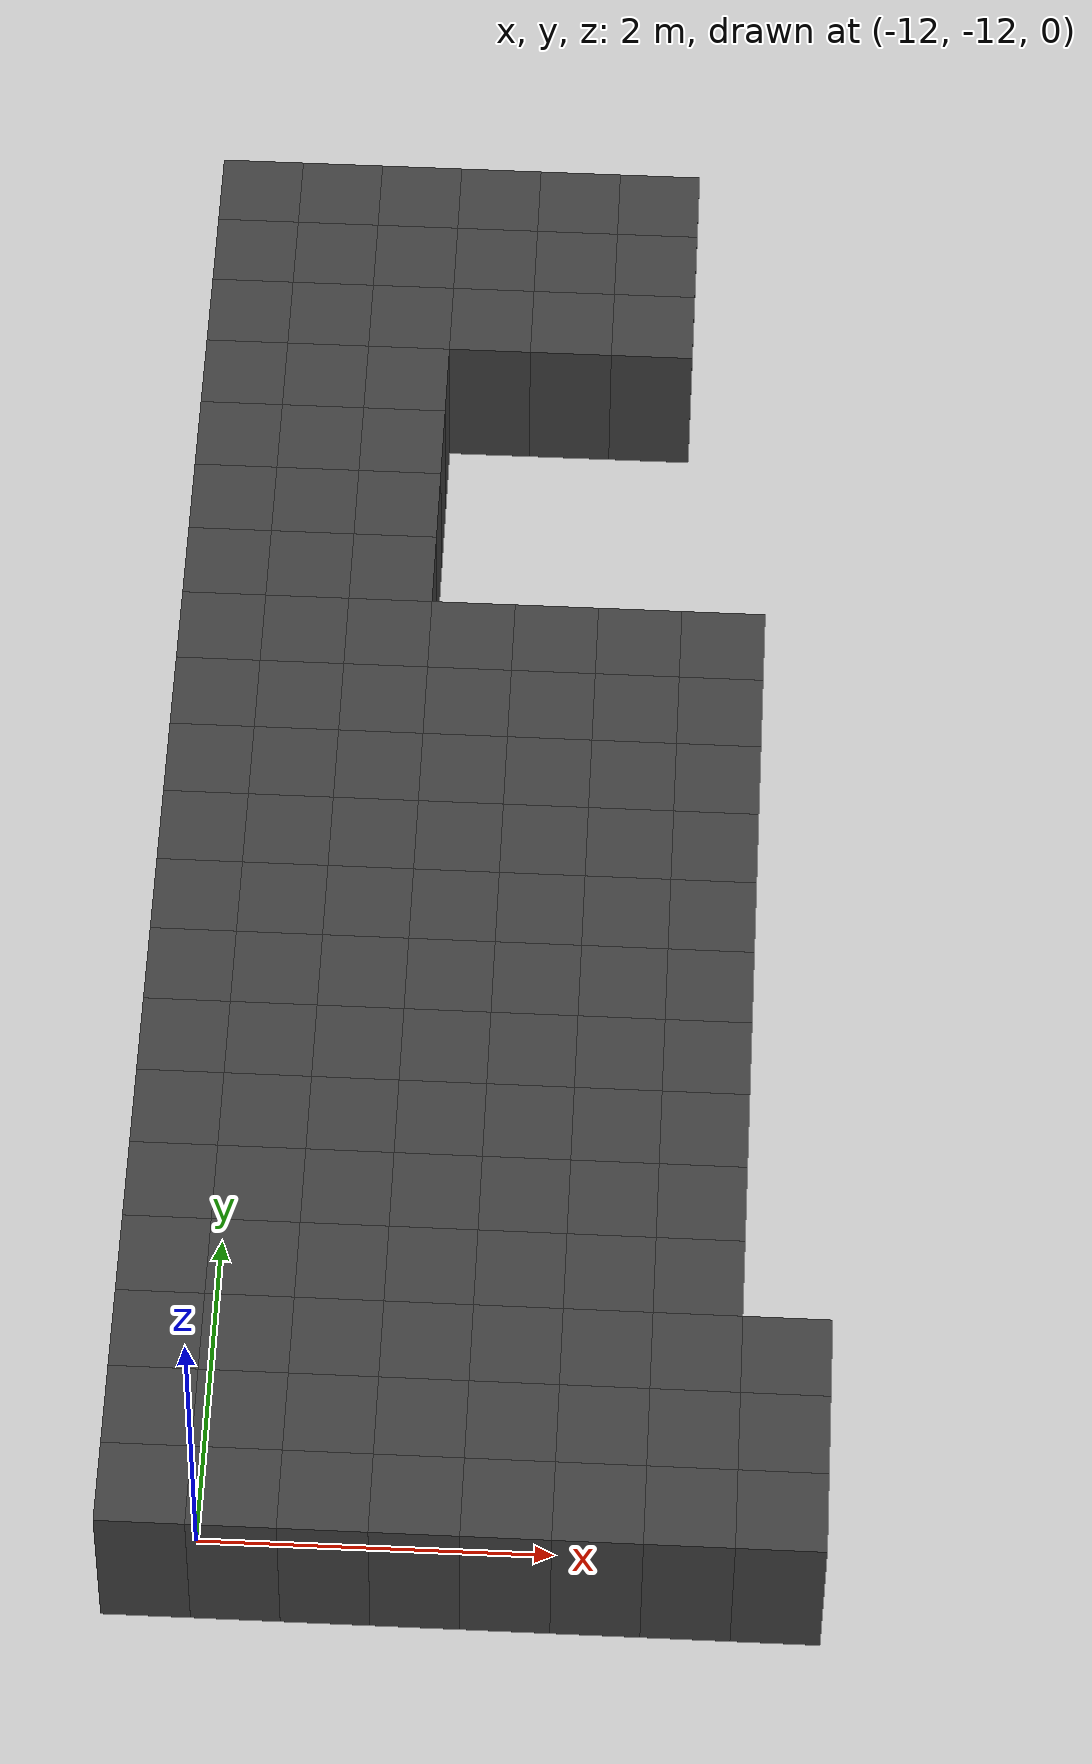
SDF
<sdf version="1.7">
 <world name="map_14802">
  <model name="ground_plane">
   <static>true</static>
   <link name="link">
    <collision name="collision">
     <geometry><plane><normal>0 0 1</normal><size>200 200</size></plane></geometry>
    </collision>
    <visual name="visual">
     <geometry><plane><normal>0 0 1</normal><size>200 200</size></plane></geometry>
     <material><ambient>0.8 0.8 0.8 1</ambient><diffuse>0.8 0.8 0.8 1</diffuse></material>
    </visual>
   </link>
  </model>
  <model name="maze_environment">
   <static>true</static>
   <link name="wall_1039">
    <pose>-12.250 -2.750 0.500 0 0 0</pose>
    <collision name="col"><geometry><box><size>0.5 0.5 1.0</size></box></geometry></collision>
    <visual name="vis">
     <geometry><box><size>0.5 0.5 1.0</size></box></geometry>
     <material><ambient>0.15 0.15 0.15 1</ambient><diffuse>0.25 0.25 0.25 1</diffuse></material>
    </visual>
   </link>
   <link name="wall_1040">
    <pose>-11.750 -2.750 0.500 0 0 0</pose>
    <collision name="col"><geometry><box><size>0.5 0.5 1.0</size></box></geometry></collision>
    <visual name="vis">
     <geometry><box><size>0.5 0.5 1.0</size></box></geometry>
     <material><ambient>0.15 0.15 0.15 1</ambient><diffuse>0.25 0.25 0.25 1</diffuse></material>
    </visual>
   </link>
   <link name="wall_1041">
    <pose>-11.250 -2.750 0.500 0 0 0</pose>
    <collision name="col"><geometry><box><size>0.5 0.5 1.0</size></box></geometry></collision>
    <visual name="vis">
     <geometry><box><size>0.5 0.5 1.0</size></box></geometry>
     <material><ambient>0.15 0.15 0.15 1</ambient><diffuse>0.25 0.25 0.25 1</diffuse></material>
    </visual>
   </link>
   <link name="wall_1042">
    <pose>-10.750 -2.750 0.500 0 0 0</pose>
    <collision name="col"><geometry><box><size>0.5 0.5 1.0</size></box></geometry></collision>
    <visual name="vis">
     <geometry><box><size>0.5 0.5 1.0</size></box></geometry>
     <material><ambient>0.15 0.15 0.15 1</ambient><diffuse>0.25 0.25 0.25 1</diffuse></material>
    </visual>
   </link>
   <link name="wall_1043">
    <pose>-10.250 -2.750 0.500 0 0 0</pose>
    <collision name="col"><geometry><box><size>0.5 0.5 1.0</size></box></geometry></collision>
    <visual name="vis">
     <geometry><box><size>0.5 0.5 1.0</size></box></geometry>
     <material><ambient>0.15 0.15 0.15 1</ambient><diffuse>0.25 0.25 0.25 1</diffuse></material>
    </visual>
   </link>
   <link name="wall_1044">
    <pose>-9.750 -2.750 0.500 0 0 0</pose>
    <collision name="col"><geometry><box><size>0.5 0.5 1.0</size></box></geometry></collision>
    <visual name="vis">
     <geometry><box><size>0.5 0.5 1.0</size></box></geometry>
     <material><ambient>0.15 0.15 0.15 1</ambient><diffuse>0.25 0.25 0.25 1</diffuse></material>
    </visual>
   </link>
   <link name="wall_1067">
    <pose>-12.250 -3.250 0.500 0 0 0</pose>
    <collision name="col"><geometry><box><size>0.5 0.5 1.0</size></box></geometry></collision>
    <visual name="vis">
     <geometry><box><size>0.5 0.5 1.0</size></box></geometry>
     <material><ambient>0.15 0.15 0.15 1</ambient><diffuse>0.25 0.25 0.25 1</diffuse></material>
    </visual>
   </link>
   <link name="wall_1068">
    <pose>-11.750 -3.250 0.500 0 0 0</pose>
    <collision name="col"><geometry><box><size>0.5 0.5 1.0</size></box></geometry></collision>
    <visual name="vis">
     <geometry><box><size>0.5 0.5 1.0</size></box></geometry>
     <material><ambient>0.15 0.15 0.15 1</ambient><diffuse>0.25 0.25 0.25 1</diffuse></material>
    </visual>
   </link>
   <link name="wall_1069">
    <pose>-11.250 -3.250 0.500 0 0 0</pose>
    <collision name="col"><geometry><box><size>0.5 0.5 1.0</size></box></geometry></collision>
    <visual name="vis">
     <geometry><box><size>0.5 0.5 1.0</size></box></geometry>
     <material><ambient>0.15 0.15 0.15 1</ambient><diffuse>0.25 0.25 0.25 1</diffuse></material>
    </visual>
   </link>
   <link name="wall_1070">
    <pose>-10.750 -3.250 0.500 0 0 0</pose>
    <collision name="col"><geometry><box><size>0.5 0.5 1.0</size></box></geometry></collision>
    <visual name="vis">
     <geometry><box><size>0.5 0.5 1.0</size></box></geometry>
     <material><ambient>0.15 0.15 0.15 1</ambient><diffuse>0.25 0.25 0.25 1</diffuse></material>
    </visual>
   </link>
   <link name="wall_1071">
    <pose>-10.250 -3.250 0.500 0 0 0</pose>
    <collision name="col"><geometry><box><size>0.5 0.5 1.0</size></box></geometry></collision>
    <visual name="vis">
     <geometry><box><size>0.5 0.5 1.0</size></box></geometry>
     <material><ambient>0.15 0.15 0.15 1</ambient><diffuse>0.25 0.25 0.25 1</diffuse></material>
    </visual>
   </link>
   <link name="wall_1072">
    <pose>-9.750 -3.250 0.500 0 0 0</pose>
    <collision name="col"><geometry><box><size>0.5 0.5 1.0</size></box></geometry></collision>
    <visual name="vis">
     <geometry><box><size>0.5 0.5 1.0</size></box></geometry>
     <material><ambient>0.15 0.15 0.15 1</ambient><diffuse>0.25 0.25 0.25 1</diffuse></material>
    </visual>
   </link>
   <link name="wall_1091">
    <pose>-12.250 -3.750 0.500 0 0 0</pose>
    <collision name="col"><geometry><box><size>0.5 0.5 1.0</size></box></geometry></collision>
    <visual name="vis">
     <geometry><box><size>0.5 0.5 1.0</size></box></geometry>
     <material><ambient>0.15 0.15 0.15 1</ambient><diffuse>0.25 0.25 0.25 1</diffuse></material>
    </visual>
   </link>
   <link name="wall_1092">
    <pose>-11.750 -3.750 0.500 0 0 0</pose>
    <collision name="col"><geometry><box><size>0.5 0.5 1.0</size></box></geometry></collision>
    <visual name="vis">
     <geometry><box><size>0.5 0.5 1.0</size></box></geometry>
     <material><ambient>0.15 0.15 0.15 1</ambient><diffuse>0.25 0.25 0.25 1</diffuse></material>
    </visual>
   </link>
   <link name="wall_1093">
    <pose>-11.250 -3.750 0.500 0 0 0</pose>
    <collision name="col"><geometry><box><size>0.5 0.5 1.0</size></box></geometry></collision>
    <visual name="vis">
     <geometry><box><size>0.5 0.5 1.0</size></box></geometry>
     <material><ambient>0.15 0.15 0.15 1</ambient><diffuse>0.25 0.25 0.25 1</diffuse></material>
    </visual>
   </link>
   <link name="wall_1094">
    <pose>-10.750 -3.750 0.500 0 0 0</pose>
    <collision name="col"><geometry><box><size>0.5 0.5 1.0</size></box></geometry></collision>
    <visual name="vis">
     <geometry><box><size>0.5 0.5 1.0</size></box></geometry>
     <material><ambient>0.15 0.15 0.15 1</ambient><diffuse>0.25 0.25 0.25 1</diffuse></material>
    </visual>
   </link>
   <link name="wall_1095">
    <pose>-10.250 -3.750 0.500 0 0 0</pose>
    <collision name="col"><geometry><box><size>0.5 0.5 1.0</size></box></geometry></collision>
    <visual name="vis">
     <geometry><box><size>0.5 0.5 1.0</size></box></geometry>
     <material><ambient>0.15 0.15 0.15 1</ambient><diffuse>0.25 0.25 0.25 1</diffuse></material>
    </visual>
   </link>
   <link name="wall_1096">
    <pose>-9.750 -3.750 0.500 0 0 0</pose>
    <collision name="col"><geometry><box><size>0.5 0.5 1.0</size></box></geometry></collision>
    <visual name="vis">
     <geometry><box><size>0.5 0.5 1.0</size></box></geometry>
     <material><ambient>0.15 0.15 0.15 1</ambient><diffuse>0.25 0.25 0.25 1</diffuse></material>
    </visual>
   </link>
   <link name="wall_1120">
    <pose>-12.250 -4.250 0.500 0 0 0</pose>
    <collision name="col"><geometry><box><size>0.5 0.5 1.0</size></box></geometry></collision>
    <visual name="vis">
     <geometry><box><size>0.5 0.5 1.0</size></box></geometry>
     <material><ambient>0.15 0.15 0.15 1</ambient><diffuse>0.25 0.25 0.25 1</diffuse></material>
    </visual>
   </link>
   <link name="wall_1121">
    <pose>-11.750 -4.250 0.500 0 0 0</pose>
    <collision name="col"><geometry><box><size>0.5 0.5 1.0</size></box></geometry></collision>
    <visual name="vis">
     <geometry><box><size>0.5 0.5 1.0</size></box></geometry>
     <material><ambient>0.15 0.15 0.15 1</ambient><diffuse>0.25 0.25 0.25 1</diffuse></material>
    </visual>
   </link>
   <link name="wall_1122">
    <pose>-11.250 -4.250 0.500 0 0 0</pose>
    <collision name="col"><geometry><box><size>0.5 0.5 1.0</size></box></geometry></collision>
    <visual name="vis">
     <geometry><box><size>0.5 0.5 1.0</size></box></geometry>
     <material><ambient>0.15 0.15 0.15 1</ambient><diffuse>0.25 0.25 0.25 1</diffuse></material>
    </visual>
   </link>
   <link name="wall_1141">
    <pose>-12.250 -4.750 0.500 0 0 0</pose>
    <collision name="col"><geometry><box><size>0.5 0.5 1.0</size></box></geometry></collision>
    <visual name="vis">
     <geometry><box><size>0.5 0.5 1.0</size></box></geometry>
     <material><ambient>0.15 0.15 0.15 1</ambient><diffuse>0.25 0.25 0.25 1</diffuse></material>
    </visual>
   </link>
   <link name="wall_1142">
    <pose>-11.750 -4.750 0.500 0 0 0</pose>
    <collision name="col"><geometry><box><size>0.5 0.5 1.0</size></box></geometry></collision>
    <visual name="vis">
     <geometry><box><size>0.5 0.5 1.0</size></box></geometry>
     <material><ambient>0.15 0.15 0.15 1</ambient><diffuse>0.25 0.25 0.25 1</diffuse></material>
    </visual>
   </link>
   <link name="wall_1143">
    <pose>-11.250 -4.750 0.500 0 0 0</pose>
    <collision name="col"><geometry><box><size>0.5 0.5 1.0</size></box></geometry></collision>
    <visual name="vis">
     <geometry><box><size>0.5 0.5 1.0</size></box></geometry>
     <material><ambient>0.15 0.15 0.15 1</ambient><diffuse>0.25 0.25 0.25 1</diffuse></material>
    </visual>
   </link>
   <link name="wall_1158">
    <pose>-12.250 -5.250 0.500 0 0 0</pose>
    <collision name="col"><geometry><box><size>0.5 0.5 1.0</size></box></geometry></collision>
    <visual name="vis">
     <geometry><box><size>0.5 0.5 1.0</size></box></geometry>
     <material><ambient>0.15 0.15 0.15 1</ambient><diffuse>0.25 0.25 0.25 1</diffuse></material>
    </visual>
   </link>
   <link name="wall_1159">
    <pose>-11.750 -5.250 0.500 0 0 0</pose>
    <collision name="col"><geometry><box><size>0.5 0.5 1.0</size></box></geometry></collision>
    <visual name="vis">
     <geometry><box><size>0.5 0.5 1.0</size></box></geometry>
     <material><ambient>0.15 0.15 0.15 1</ambient><diffuse>0.25 0.25 0.25 1</diffuse></material>
    </visual>
   </link>
   <link name="wall_1160">
    <pose>-11.250 -5.250 0.500 0 0 0</pose>
    <collision name="col"><geometry><box><size>0.5 0.5 1.0</size></box></geometry></collision>
    <visual name="vis">
     <geometry><box><size>0.5 0.5 1.0</size></box></geometry>
     <material><ambient>0.15 0.15 0.15 1</ambient><diffuse>0.25 0.25 0.25 1</diffuse></material>
    </visual>
   </link>
   <link name="wall_1186">
    <pose>-12.250 -5.750 0.500 0 0 0</pose>
    <collision name="col"><geometry><box><size>0.5 0.5 1.0</size></box></geometry></collision>
    <visual name="vis">
     <geometry><box><size>0.5 0.5 1.0</size></box></geometry>
     <material><ambient>0.15 0.15 0.15 1</ambient><diffuse>0.25 0.25 0.25 1</diffuse></material>
    </visual>
   </link>
   <link name="wall_1187">
    <pose>-11.750 -5.750 0.500 0 0 0</pose>
    <collision name="col"><geometry><box><size>0.5 0.5 1.0</size></box></geometry></collision>
    <visual name="vis">
     <geometry><box><size>0.5 0.5 1.0</size></box></geometry>
     <material><ambient>0.15 0.15 0.15 1</ambient><diffuse>0.25 0.25 0.25 1</diffuse></material>
    </visual>
   </link>
   <link name="wall_1188">
    <pose>-11.250 -5.750 0.500 0 0 0</pose>
    <collision name="col"><geometry><box><size>0.5 0.5 1.0</size></box></geometry></collision>
    <visual name="vis">
     <geometry><box><size>0.5 0.5 1.0</size></box></geometry>
     <material><ambient>0.15 0.15 0.15 1</ambient><diffuse>0.25 0.25 0.25 1</diffuse></material>
    </visual>
   </link>
   <link name="wall_1207">
    <pose>-12.250 -6.250 0.500 0 0 0</pose>
    <collision name="col"><geometry><box><size>0.5 0.5 1.0</size></box></geometry></collision>
    <visual name="vis">
     <geometry><box><size>0.5 0.5 1.0</size></box></geometry>
     <material><ambient>0.15 0.15 0.15 1</ambient><diffuse>0.25 0.25 0.25 1</diffuse></material>
    </visual>
   </link>
   <link name="wall_1208">
    <pose>-11.750 -6.250 0.500 0 0 0</pose>
    <collision name="col"><geometry><box><size>0.5 0.5 1.0</size></box></geometry></collision>
    <visual name="vis">
     <geometry><box><size>0.5 0.5 1.0</size></box></geometry>
     <material><ambient>0.15 0.15 0.15 1</ambient><diffuse>0.25 0.25 0.25 1</diffuse></material>
    </visual>
   </link>
   <link name="wall_1209">
    <pose>-11.250 -6.250 0.500 0 0 0</pose>
    <collision name="col"><geometry><box><size>0.5 0.5 1.0</size></box></geometry></collision>
    <visual name="vis">
     <geometry><box><size>0.5 0.5 1.0</size></box></geometry>
     <material><ambient>0.15 0.15 0.15 1</ambient><diffuse>0.25 0.25 0.25 1</diffuse></material>
    </visual>
   </link>
   <link name="wall_1210">
    <pose>-10.750 -6.250 0.500 0 0 0</pose>
    <collision name="col"><geometry><box><size>0.5 0.5 1.0</size></box></geometry></collision>
    <visual name="vis">
     <geometry><box><size>0.5 0.5 1.0</size></box></geometry>
     <material><ambient>0.15 0.15 0.15 1</ambient><diffuse>0.25 0.25 0.25 1</diffuse></material>
    </visual>
   </link>
   <link name="wall_1211">
    <pose>-10.250 -6.250 0.500 0 0 0</pose>
    <collision name="col"><geometry><box><size>0.5 0.5 1.0</size></box></geometry></collision>
    <visual name="vis">
     <geometry><box><size>0.5 0.5 1.0</size></box></geometry>
     <material><ambient>0.15 0.15 0.15 1</ambient><diffuse>0.25 0.25 0.25 1</diffuse></material>
    </visual>
   </link>
   <link name="wall_1212">
    <pose>-9.750 -6.250 0.500 0 0 0</pose>
    <collision name="col"><geometry><box><size>0.5 0.5 1.0</size></box></geometry></collision>
    <visual name="vis">
     <geometry><box><size>0.5 0.5 1.0</size></box></geometry>
     <material><ambient>0.15 0.15 0.15 1</ambient><diffuse>0.25 0.25 0.25 1</diffuse></material>
    </visual>
   </link>
   <link name="wall_1213">
    <pose>-9.250 -6.250 0.500 0 0 0</pose>
    <collision name="col"><geometry><box><size>0.5 0.5 1.0</size></box></geometry></collision>
    <visual name="vis">
     <geometry><box><size>0.5 0.5 1.0</size></box></geometry>
     <material><ambient>0.15 0.15 0.15 1</ambient><diffuse>0.25 0.25 0.25 1</diffuse></material>
    </visual>
   </link>
   <link name="wall_1240">
    <pose>-12.250 -6.750 0.500 0 0 0</pose>
    <collision name="col"><geometry><box><size>0.5 0.5 1.0</size></box></geometry></collision>
    <visual name="vis">
     <geometry><box><size>0.5 0.5 1.0</size></box></geometry>
     <material><ambient>0.15 0.15 0.15 1</ambient><diffuse>0.25 0.25 0.25 1</diffuse></material>
    </visual>
   </link>
   <link name="wall_1241">
    <pose>-11.750 -6.750 0.500 0 0 0</pose>
    <collision name="col"><geometry><box><size>0.5 0.5 1.0</size></box></geometry></collision>
    <visual name="vis">
     <geometry><box><size>0.5 0.5 1.0</size></box></geometry>
     <material><ambient>0.15 0.15 0.15 1</ambient><diffuse>0.25 0.25 0.25 1</diffuse></material>
    </visual>
   </link>
   <link name="wall_1242">
    <pose>-11.250 -6.750 0.500 0 0 0</pose>
    <collision name="col"><geometry><box><size>0.5 0.5 1.0</size></box></geometry></collision>
    <visual name="vis">
     <geometry><box><size>0.5 0.5 1.0</size></box></geometry>
     <material><ambient>0.15 0.15 0.15 1</ambient><diffuse>0.25 0.25 0.25 1</diffuse></material>
    </visual>
   </link>
   <link name="wall_1243">
    <pose>-10.750 -6.750 0.500 0 0 0</pose>
    <collision name="col"><geometry><box><size>0.5 0.5 1.0</size></box></geometry></collision>
    <visual name="vis">
     <geometry><box><size>0.5 0.5 1.0</size></box></geometry>
     <material><ambient>0.15 0.15 0.15 1</ambient><diffuse>0.25 0.25 0.25 1</diffuse></material>
    </visual>
   </link>
   <link name="wall_1244">
    <pose>-10.250 -6.750 0.500 0 0 0</pose>
    <collision name="col"><geometry><box><size>0.5 0.5 1.0</size></box></geometry></collision>
    <visual name="vis">
     <geometry><box><size>0.5 0.5 1.0</size></box></geometry>
     <material><ambient>0.15 0.15 0.15 1</ambient><diffuse>0.25 0.25 0.25 1</diffuse></material>
    </visual>
   </link>
   <link name="wall_1245">
    <pose>-9.750 -6.750 0.500 0 0 0</pose>
    <collision name="col"><geometry><box><size>0.5 0.5 1.0</size></box></geometry></collision>
    <visual name="vis">
     <geometry><box><size>0.5 0.5 1.0</size></box></geometry>
     <material><ambient>0.15 0.15 0.15 1</ambient><diffuse>0.25 0.25 0.25 1</diffuse></material>
    </visual>
   </link>
   <link name="wall_1246">
    <pose>-9.250 -6.750 0.500 0 0 0</pose>
    <collision name="col"><geometry><box><size>0.5 0.5 1.0</size></box></geometry></collision>
    <visual name="vis">
     <geometry><box><size>0.5 0.5 1.0</size></box></geometry>
     <material><ambient>0.15 0.15 0.15 1</ambient><diffuse>0.25 0.25 0.25 1</diffuse></material>
    </visual>
   </link>
   <link name="wall_1275">
    <pose>-12.250 -7.250 0.500 0 0 0</pose>
    <collision name="col"><geometry><box><size>0.5 0.5 1.0</size></box></geometry></collision>
    <visual name="vis">
     <geometry><box><size>0.5 0.5 1.0</size></box></geometry>
     <material><ambient>0.15 0.15 0.15 1</ambient><diffuse>0.25 0.25 0.25 1</diffuse></material>
    </visual>
   </link>
   <link name="wall_1276">
    <pose>-11.750 -7.250 0.500 0 0 0</pose>
    <collision name="col"><geometry><box><size>0.5 0.5 1.0</size></box></geometry></collision>
    <visual name="vis">
     <geometry><box><size>0.5 0.5 1.0</size></box></geometry>
     <material><ambient>0.15 0.15 0.15 1</ambient><diffuse>0.25 0.25 0.25 1</diffuse></material>
    </visual>
   </link>
   <link name="wall_1277">
    <pose>-11.250 -7.250 0.500 0 0 0</pose>
    <collision name="col"><geometry><box><size>0.5 0.5 1.0</size></box></geometry></collision>
    <visual name="vis">
     <geometry><box><size>0.5 0.5 1.0</size></box></geometry>
     <material><ambient>0.15 0.15 0.15 1</ambient><diffuse>0.25 0.25 0.25 1</diffuse></material>
    </visual>
   </link>
   <link name="wall_1278">
    <pose>-10.750 -7.250 0.500 0 0 0</pose>
    <collision name="col"><geometry><box><size>0.5 0.5 1.0</size></box></geometry></collision>
    <visual name="vis">
     <geometry><box><size>0.5 0.5 1.0</size></box></geometry>
     <material><ambient>0.15 0.15 0.15 1</ambient><diffuse>0.25 0.25 0.25 1</diffuse></material>
    </visual>
   </link>
   <link name="wall_1279">
    <pose>-10.250 -7.250 0.500 0 0 0</pose>
    <collision name="col"><geometry><box><size>0.5 0.5 1.0</size></box></geometry></collision>
    <visual name="vis">
     <geometry><box><size>0.5 0.5 1.0</size></box></geometry>
     <material><ambient>0.15 0.15 0.15 1</ambient><diffuse>0.25 0.25 0.25 1</diffuse></material>
    </visual>
   </link>
   <link name="wall_1280">
    <pose>-9.750 -7.250 0.500 0 0 0</pose>
    <collision name="col"><geometry><box><size>0.5 0.5 1.0</size></box></geometry></collision>
    <visual name="vis">
     <geometry><box><size>0.5 0.5 1.0</size></box></geometry>
     <material><ambient>0.15 0.15 0.15 1</ambient><diffuse>0.25 0.25 0.25 1</diffuse></material>
    </visual>
   </link>
   <link name="wall_1281">
    <pose>-9.250 -7.250 0.500 0 0 0</pose>
    <collision name="col"><geometry><box><size>0.5 0.5 1.0</size></box></geometry></collision>
    <visual name="vis">
     <geometry><box><size>0.5 0.5 1.0</size></box></geometry>
     <material><ambient>0.15 0.15 0.15 1</ambient><diffuse>0.25 0.25 0.25 1</diffuse></material>
    </visual>
   </link>
   <link name="wall_1310">
    <pose>-12.250 -7.750 0.500 0 0 0</pose>
    <collision name="col"><geometry><box><size>0.5 0.5 1.0</size></box></geometry></collision>
    <visual name="vis">
     <geometry><box><size>0.5 0.5 1.0</size></box></geometry>
     <material><ambient>0.15 0.15 0.15 1</ambient><diffuse>0.25 0.25 0.25 1</diffuse></material>
    </visual>
   </link>
   <link name="wall_1311">
    <pose>-11.750 -7.750 0.500 0 0 0</pose>
    <collision name="col"><geometry><box><size>0.5 0.5 1.0</size></box></geometry></collision>
    <visual name="vis">
     <geometry><box><size>0.5 0.5 1.0</size></box></geometry>
     <material><ambient>0.15 0.15 0.15 1</ambient><diffuse>0.25 0.25 0.25 1</diffuse></material>
    </visual>
   </link>
   <link name="wall_1312">
    <pose>-11.250 -7.750 0.500 0 0 0</pose>
    <collision name="col"><geometry><box><size>0.5 0.5 1.0</size></box></geometry></collision>
    <visual name="vis">
     <geometry><box><size>0.5 0.5 1.0</size></box></geometry>
     <material><ambient>0.15 0.15 0.15 1</ambient><diffuse>0.25 0.25 0.25 1</diffuse></material>
    </visual>
   </link>
   <link name="wall_1313">
    <pose>-10.750 -7.750 0.500 0 0 0</pose>
    <collision name="col"><geometry><box><size>0.5 0.5 1.0</size></box></geometry></collision>
    <visual name="vis">
     <geometry><box><size>0.5 0.5 1.0</size></box></geometry>
     <material><ambient>0.15 0.15 0.15 1</ambient><diffuse>0.25 0.25 0.25 1</diffuse></material>
    </visual>
   </link>
   <link name="wall_1314">
    <pose>-10.250 -7.750 0.500 0 0 0</pose>
    <collision name="col"><geometry><box><size>0.5 0.5 1.0</size></box></geometry></collision>
    <visual name="vis">
     <geometry><box><size>0.5 0.5 1.0</size></box></geometry>
     <material><ambient>0.15 0.15 0.15 1</ambient><diffuse>0.25 0.25 0.25 1</diffuse></material>
    </visual>
   </link>
   <link name="wall_1315">
    <pose>-9.750 -7.750 0.500 0 0 0</pose>
    <collision name="col"><geometry><box><size>0.5 0.5 1.0</size></box></geometry></collision>
    <visual name="vis">
     <geometry><box><size>0.5 0.5 1.0</size></box></geometry>
     <material><ambient>0.15 0.15 0.15 1</ambient><diffuse>0.25 0.25 0.25 1</diffuse></material>
    </visual>
   </link>
   <link name="wall_1316">
    <pose>-9.250 -7.750 0.500 0 0 0</pose>
    <collision name="col"><geometry><box><size>0.5 0.5 1.0</size></box></geometry></collision>
    <visual name="vis">
     <geometry><box><size>0.5 0.5 1.0</size></box></geometry>
     <material><ambient>0.15 0.15 0.15 1</ambient><diffuse>0.25 0.25 0.25 1</diffuse></material>
    </visual>
   </link>
   <link name="wall_1345">
    <pose>-12.250 -8.250 0.500 0 0 0</pose>
    <collision name="col"><geometry><box><size>0.5 0.5 1.0</size></box></geometry></collision>
    <visual name="vis">
     <geometry><box><size>0.5 0.5 1.0</size></box></geometry>
     <material><ambient>0.15 0.15 0.15 1</ambient><diffuse>0.25 0.25 0.25 1</diffuse></material>
    </visual>
   </link>
   <link name="wall_1346">
    <pose>-11.750 -8.250 0.500 0 0 0</pose>
    <collision name="col"><geometry><box><size>0.5 0.5 1.0</size></box></geometry></collision>
    <visual name="vis">
     <geometry><box><size>0.5 0.5 1.0</size></box></geometry>
     <material><ambient>0.15 0.15 0.15 1</ambient><diffuse>0.25 0.25 0.25 1</diffuse></material>
    </visual>
   </link>
   <link name="wall_1347">
    <pose>-11.250 -8.250 0.500 0 0 0</pose>
    <collision name="col"><geometry><box><size>0.5 0.5 1.0</size></box></geometry></collision>
    <visual name="vis">
     <geometry><box><size>0.5 0.5 1.0</size></box></geometry>
     <material><ambient>0.15 0.15 0.15 1</ambient><diffuse>0.25 0.25 0.25 1</diffuse></material>
    </visual>
   </link>
   <link name="wall_1348">
    <pose>-10.750 -8.250 0.500 0 0 0</pose>
    <collision name="col"><geometry><box><size>0.5 0.5 1.0</size></box></geometry></collision>
    <visual name="vis">
     <geometry><box><size>0.5 0.5 1.0</size></box></geometry>
     <material><ambient>0.15 0.15 0.15 1</ambient><diffuse>0.25 0.25 0.25 1</diffuse></material>
    </visual>
   </link>
   <link name="wall_1349">
    <pose>-10.250 -8.250 0.500 0 0 0</pose>
    <collision name="col"><geometry><box><size>0.5 0.5 1.0</size></box></geometry></collision>
    <visual name="vis">
     <geometry><box><size>0.5 0.5 1.0</size></box></geometry>
     <material><ambient>0.15 0.15 0.15 1</ambient><diffuse>0.25 0.25 0.25 1</diffuse></material>
    </visual>
   </link>
   <link name="wall_1350">
    <pose>-9.750 -8.250 0.500 0 0 0</pose>
    <collision name="col"><geometry><box><size>0.5 0.5 1.0</size></box></geometry></collision>
    <visual name="vis">
     <geometry><box><size>0.5 0.5 1.0</size></box></geometry>
     <material><ambient>0.15 0.15 0.15 1</ambient><diffuse>0.25 0.25 0.25 1</diffuse></material>
    </visual>
   </link>
   <link name="wall_1351">
    <pose>-9.250 -8.250 0.500 0 0 0</pose>
    <collision name="col"><geometry><box><size>0.5 0.5 1.0</size></box></geometry></collision>
    <visual name="vis">
     <geometry><box><size>0.5 0.5 1.0</size></box></geometry>
     <material><ambient>0.15 0.15 0.15 1</ambient><diffuse>0.25 0.25 0.25 1</diffuse></material>
    </visual>
   </link>
   <link name="wall_1386">
    <pose>-12.250 -8.750 0.500 0 0 0</pose>
    <collision name="col"><geometry><box><size>0.5 0.5 1.0</size></box></geometry></collision>
    <visual name="vis">
     <geometry><box><size>0.5 0.5 1.0</size></box></geometry>
     <material><ambient>0.15 0.15 0.15 1</ambient><diffuse>0.25 0.25 0.25 1</diffuse></material>
    </visual>
   </link>
   <link name="wall_1387">
    <pose>-11.750 -8.750 0.500 0 0 0</pose>
    <collision name="col"><geometry><box><size>0.5 0.5 1.0</size></box></geometry></collision>
    <visual name="vis">
     <geometry><box><size>0.5 0.5 1.0</size></box></geometry>
     <material><ambient>0.15 0.15 0.15 1</ambient><diffuse>0.25 0.25 0.25 1</diffuse></material>
    </visual>
   </link>
   <link name="wall_1388">
    <pose>-11.250 -8.750 0.500 0 0 0</pose>
    <collision name="col"><geometry><box><size>0.5 0.5 1.0</size></box></geometry></collision>
    <visual name="vis">
     <geometry><box><size>0.5 0.5 1.0</size></box></geometry>
     <material><ambient>0.15 0.15 0.15 1</ambient><diffuse>0.25 0.25 0.25 1</diffuse></material>
    </visual>
   </link>
   <link name="wall_1389">
    <pose>-10.750 -8.750 0.500 0 0 0</pose>
    <collision name="col"><geometry><box><size>0.5 0.5 1.0</size></box></geometry></collision>
    <visual name="vis">
     <geometry><box><size>0.5 0.5 1.0</size></box></geometry>
     <material><ambient>0.15 0.15 0.15 1</ambient><diffuse>0.25 0.25 0.25 1</diffuse></material>
    </visual>
   </link>
   <link name="wall_1390">
    <pose>-10.250 -8.750 0.500 0 0 0</pose>
    <collision name="col"><geometry><box><size>0.5 0.5 1.0</size></box></geometry></collision>
    <visual name="vis">
     <geometry><box><size>0.5 0.5 1.0</size></box></geometry>
     <material><ambient>0.15 0.15 0.15 1</ambient><diffuse>0.25 0.25 0.25 1</diffuse></material>
    </visual>
   </link>
   <link name="wall_1391">
    <pose>-9.750 -8.750 0.500 0 0 0</pose>
    <collision name="col"><geometry><box><size>0.5 0.5 1.0</size></box></geometry></collision>
    <visual name="vis">
     <geometry><box><size>0.5 0.5 1.0</size></box></geometry>
     <material><ambient>0.15 0.15 0.15 1</ambient><diffuse>0.25 0.25 0.25 1</diffuse></material>
    </visual>
   </link>
   <link name="wall_1392">
    <pose>-9.250 -8.750 0.500 0 0 0</pose>
    <collision name="col"><geometry><box><size>0.5 0.5 1.0</size></box></geometry></collision>
    <visual name="vis">
     <geometry><box><size>0.5 0.5 1.0</size></box></geometry>
     <material><ambient>0.15 0.15 0.15 1</ambient><diffuse>0.25 0.25 0.25 1</diffuse></material>
    </visual>
   </link>
   <link name="wall_1428">
    <pose>-12.250 -9.250 0.500 0 0 0</pose>
    <collision name="col"><geometry><box><size>0.5 0.5 1.0</size></box></geometry></collision>
    <visual name="vis">
     <geometry><box><size>0.5 0.5 1.0</size></box></geometry>
     <material><ambient>0.15 0.15 0.15 1</ambient><diffuse>0.25 0.25 0.25 1</diffuse></material>
    </visual>
   </link>
   <link name="wall_1429">
    <pose>-11.750 -9.250 0.500 0 0 0</pose>
    <collision name="col"><geometry><box><size>0.5 0.5 1.0</size></box></geometry></collision>
    <visual name="vis">
     <geometry><box><size>0.5 0.5 1.0</size></box></geometry>
     <material><ambient>0.15 0.15 0.15 1</ambient><diffuse>0.25 0.25 0.25 1</diffuse></material>
    </visual>
   </link>
   <link name="wall_1430">
    <pose>-11.250 -9.250 0.500 0 0 0</pose>
    <collision name="col"><geometry><box><size>0.5 0.5 1.0</size></box></geometry></collision>
    <visual name="vis">
     <geometry><box><size>0.5 0.5 1.0</size></box></geometry>
     <material><ambient>0.15 0.15 0.15 1</ambient><diffuse>0.25 0.25 0.25 1</diffuse></material>
    </visual>
   </link>
   <link name="wall_1431">
    <pose>-10.750 -9.250 0.500 0 0 0</pose>
    <collision name="col"><geometry><box><size>0.5 0.5 1.0</size></box></geometry></collision>
    <visual name="vis">
     <geometry><box><size>0.5 0.5 1.0</size></box></geometry>
     <material><ambient>0.15 0.15 0.15 1</ambient><diffuse>0.25 0.25 0.25 1</diffuse></material>
    </visual>
   </link>
   <link name="wall_1432">
    <pose>-10.250 -9.250 0.500 0 0 0</pose>
    <collision name="col"><geometry><box><size>0.5 0.5 1.0</size></box></geometry></collision>
    <visual name="vis">
     <geometry><box><size>0.5 0.5 1.0</size></box></geometry>
     <material><ambient>0.15 0.15 0.15 1</ambient><diffuse>0.25 0.25 0.25 1</diffuse></material>
    </visual>
   </link>
   <link name="wall_1433">
    <pose>-9.750 -9.250 0.500 0 0 0</pose>
    <collision name="col"><geometry><box><size>0.5 0.5 1.0</size></box></geometry></collision>
    <visual name="vis">
     <geometry><box><size>0.5 0.5 1.0</size></box></geometry>
     <material><ambient>0.15 0.15 0.15 1</ambient><diffuse>0.25 0.25 0.25 1</diffuse></material>
    </visual>
   </link>
   <link name="wall_1434">
    <pose>-9.250 -9.250 0.500 0 0 0</pose>
    <collision name="col"><geometry><box><size>0.5 0.5 1.0</size></box></geometry></collision>
    <visual name="vis">
     <geometry><box><size>0.5 0.5 1.0</size></box></geometry>
     <material><ambient>0.15 0.15 0.15 1</ambient><diffuse>0.25 0.25 0.25 1</diffuse></material>
    </visual>
   </link>
   <link name="wall_1470">
    <pose>-12.250 -9.750 0.500 0 0 0</pose>
    <collision name="col"><geometry><box><size>0.5 0.5 1.0</size></box></geometry></collision>
    <visual name="vis">
     <geometry><box><size>0.5 0.5 1.0</size></box></geometry>
     <material><ambient>0.15 0.15 0.15 1</ambient><diffuse>0.25 0.25 0.25 1</diffuse></material>
    </visual>
   </link>
   <link name="wall_1471">
    <pose>-11.750 -9.750 0.500 0 0 0</pose>
    <collision name="col"><geometry><box><size>0.5 0.5 1.0</size></box></geometry></collision>
    <visual name="vis">
     <geometry><box><size>0.5 0.5 1.0</size></box></geometry>
     <material><ambient>0.15 0.15 0.15 1</ambient><diffuse>0.25 0.25 0.25 1</diffuse></material>
    </visual>
   </link>
   <link name="wall_1472">
    <pose>-11.250 -9.750 0.500 0 0 0</pose>
    <collision name="col"><geometry><box><size>0.5 0.5 1.0</size></box></geometry></collision>
    <visual name="vis">
     <geometry><box><size>0.5 0.5 1.0</size></box></geometry>
     <material><ambient>0.15 0.15 0.15 1</ambient><diffuse>0.25 0.25 0.25 1</diffuse></material>
    </visual>
   </link>
   <link name="wall_1473">
    <pose>-10.750 -9.750 0.500 0 0 0</pose>
    <collision name="col"><geometry><box><size>0.5 0.5 1.0</size></box></geometry></collision>
    <visual name="vis">
     <geometry><box><size>0.5 0.5 1.0</size></box></geometry>
     <material><ambient>0.15 0.15 0.15 1</ambient><diffuse>0.25 0.25 0.25 1</diffuse></material>
    </visual>
   </link>
   <link name="wall_1474">
    <pose>-10.250 -9.750 0.500 0 0 0</pose>
    <collision name="col"><geometry><box><size>0.5 0.5 1.0</size></box></geometry></collision>
    <visual name="vis">
     <geometry><box><size>0.5 0.5 1.0</size></box></geometry>
     <material><ambient>0.15 0.15 0.15 1</ambient><diffuse>0.25 0.25 0.25 1</diffuse></material>
    </visual>
   </link>
   <link name="wall_1475">
    <pose>-9.750 -9.750 0.500 0 0 0</pose>
    <collision name="col"><geometry><box><size>0.5 0.5 1.0</size></box></geometry></collision>
    <visual name="vis">
     <geometry><box><size>0.5 0.5 1.0</size></box></geometry>
     <material><ambient>0.15 0.15 0.15 1</ambient><diffuse>0.25 0.25 0.25 1</diffuse></material>
    </visual>
   </link>
   <link name="wall_1476">
    <pose>-9.250 -9.750 0.500 0 0 0</pose>
    <collision name="col"><geometry><box><size>0.5 0.5 1.0</size></box></geometry></collision>
    <visual name="vis">
     <geometry><box><size>0.5 0.5 1.0</size></box></geometry>
     <material><ambient>0.15 0.15 0.15 1</ambient><diffuse>0.25 0.25 0.25 1</diffuse></material>
    </visual>
   </link>
   <link name="wall_1510">
    <pose>-12.250 -10.250 0.500 0 0 0</pose>
    <collision name="col"><geometry><box><size>0.5 0.5 1.0</size></box></geometry></collision>
    <visual name="vis">
     <geometry><box><size>0.5 0.5 1.0</size></box></geometry>
     <material><ambient>0.15 0.15 0.15 1</ambient><diffuse>0.25 0.25 0.25 1</diffuse></material>
    </visual>
   </link>
   <link name="wall_1511">
    <pose>-11.750 -10.250 0.500 0 0 0</pose>
    <collision name="col"><geometry><box><size>0.5 0.5 1.0</size></box></geometry></collision>
    <visual name="vis">
     <geometry><box><size>0.5 0.5 1.0</size></box></geometry>
     <material><ambient>0.15 0.15 0.15 1</ambient><diffuse>0.25 0.25 0.25 1</diffuse></material>
    </visual>
   </link>
   <link name="wall_1512">
    <pose>-11.250 -10.250 0.500 0 0 0</pose>
    <collision name="col"><geometry><box><size>0.5 0.5 1.0</size></box></geometry></collision>
    <visual name="vis">
     <geometry><box><size>0.5 0.5 1.0</size></box></geometry>
     <material><ambient>0.15 0.15 0.15 1</ambient><diffuse>0.25 0.25 0.25 1</diffuse></material>
    </visual>
   </link>
   <link name="wall_1513">
    <pose>-10.750 -10.250 0.500 0 0 0</pose>
    <collision name="col"><geometry><box><size>0.5 0.5 1.0</size></box></geometry></collision>
    <visual name="vis">
     <geometry><box><size>0.5 0.5 1.0</size></box></geometry>
     <material><ambient>0.15 0.15 0.15 1</ambient><diffuse>0.25 0.25 0.25 1</diffuse></material>
    </visual>
   </link>
   <link name="wall_1514">
    <pose>-10.250 -10.250 0.500 0 0 0</pose>
    <collision name="col"><geometry><box><size>0.5 0.5 1.0</size></box></geometry></collision>
    <visual name="vis">
     <geometry><box><size>0.5 0.5 1.0</size></box></geometry>
     <material><ambient>0.15 0.15 0.15 1</ambient><diffuse>0.25 0.25 0.25 1</diffuse></material>
    </visual>
   </link>
   <link name="wall_1515">
    <pose>-9.750 -10.250 0.500 0 0 0</pose>
    <collision name="col"><geometry><box><size>0.5 0.5 1.0</size></box></geometry></collision>
    <visual name="vis">
     <geometry><box><size>0.5 0.5 1.0</size></box></geometry>
     <material><ambient>0.15 0.15 0.15 1</ambient><diffuse>0.25 0.25 0.25 1</diffuse></material>
    </visual>
   </link>
   <link name="wall_1516">
    <pose>-9.250 -10.250 0.500 0 0 0</pose>
    <collision name="col"><geometry><box><size>0.5 0.5 1.0</size></box></geometry></collision>
    <visual name="vis">
     <geometry><box><size>0.5 0.5 1.0</size></box></geometry>
     <material><ambient>0.15 0.15 0.15 1</ambient><diffuse>0.25 0.25 0.25 1</diffuse></material>
    </visual>
   </link>
   <link name="wall_1553">
    <pose>-12.250 -10.750 0.500 0 0 0</pose>
    <collision name="col"><geometry><box><size>0.5 0.5 1.0</size></box></geometry></collision>
    <visual name="vis">
     <geometry><box><size>0.5 0.5 1.0</size></box></geometry>
     <material><ambient>0.15 0.15 0.15 1</ambient><diffuse>0.25 0.25 0.25 1</diffuse></material>
    </visual>
   </link>
   <link name="wall_1554">
    <pose>-11.750 -10.750 0.500 0 0 0</pose>
    <collision name="col"><geometry><box><size>0.5 0.5 1.0</size></box></geometry></collision>
    <visual name="vis">
     <geometry><box><size>0.5 0.5 1.0</size></box></geometry>
     <material><ambient>0.15 0.15 0.15 1</ambient><diffuse>0.25 0.25 0.25 1</diffuse></material>
    </visual>
   </link>
   <link name="wall_1555">
    <pose>-11.250 -10.750 0.500 0 0 0</pose>
    <collision name="col"><geometry><box><size>0.5 0.5 1.0</size></box></geometry></collision>
    <visual name="vis">
     <geometry><box><size>0.5 0.5 1.0</size></box></geometry>
     <material><ambient>0.15 0.15 0.15 1</ambient><diffuse>0.25 0.25 0.25 1</diffuse></material>
    </visual>
   </link>
   <link name="wall_1556">
    <pose>-10.750 -10.750 0.500 0 0 0</pose>
    <collision name="col"><geometry><box><size>0.5 0.5 1.0</size></box></geometry></collision>
    <visual name="vis">
     <geometry><box><size>0.5 0.5 1.0</size></box></geometry>
     <material><ambient>0.15 0.15 0.15 1</ambient><diffuse>0.25 0.25 0.25 1</diffuse></material>
    </visual>
   </link>
   <link name="wall_1557">
    <pose>-10.250 -10.750 0.500 0 0 0</pose>
    <collision name="col"><geometry><box><size>0.5 0.5 1.0</size></box></geometry></collision>
    <visual name="vis">
     <geometry><box><size>0.5 0.5 1.0</size></box></geometry>
     <material><ambient>0.15 0.15 0.15 1</ambient><diffuse>0.25 0.25 0.25 1</diffuse></material>
    </visual>
   </link>
   <link name="wall_1558">
    <pose>-9.750 -10.750 0.500 0 0 0</pose>
    <collision name="col"><geometry><box><size>0.5 0.5 1.0</size></box></geometry></collision>
    <visual name="vis">
     <geometry><box><size>0.5 0.5 1.0</size></box></geometry>
     <material><ambient>0.15 0.15 0.15 1</ambient><diffuse>0.25 0.25 0.25 1</diffuse></material>
    </visual>
   </link>
   <link name="wall_1559">
    <pose>-9.250 -10.750 0.500 0 0 0</pose>
    <collision name="col"><geometry><box><size>0.5 0.5 1.0</size></box></geometry></collision>
    <visual name="vis">
     <geometry><box><size>0.5 0.5 1.0</size></box></geometry>
     <material><ambient>0.15 0.15 0.15 1</ambient><diffuse>0.25 0.25 0.25 1</diffuse></material>
    </visual>
   </link>
   <link name="wall_1599">
    <pose>-12.250 -11.250 0.500 0 0 0</pose>
    <collision name="col"><geometry><box><size>0.5 0.5 1.0</size></box></geometry></collision>
    <visual name="vis">
     <geometry><box><size>0.5 0.5 1.0</size></box></geometry>
     <material><ambient>0.15 0.15 0.15 1</ambient><diffuse>0.25 0.25 0.25 1</diffuse></material>
    </visual>
   </link>
   <link name="wall_1600">
    <pose>-11.750 -11.250 0.500 0 0 0</pose>
    <collision name="col"><geometry><box><size>0.5 0.5 1.0</size></box></geometry></collision>
    <visual name="vis">
     <geometry><box><size>0.5 0.5 1.0</size></box></geometry>
     <material><ambient>0.15 0.15 0.15 1</ambient><diffuse>0.25 0.25 0.25 1</diffuse></material>
    </visual>
   </link>
   <link name="wall_1601">
    <pose>-11.250 -11.250 0.500 0 0 0</pose>
    <collision name="col"><geometry><box><size>0.5 0.5 1.0</size></box></geometry></collision>
    <visual name="vis">
     <geometry><box><size>0.5 0.5 1.0</size></box></geometry>
     <material><ambient>0.15 0.15 0.15 1</ambient><diffuse>0.25 0.25 0.25 1</diffuse></material>
    </visual>
   </link>
   <link name="wall_1602">
    <pose>-10.750 -11.250 0.500 0 0 0</pose>
    <collision name="col"><geometry><box><size>0.5 0.5 1.0</size></box></geometry></collision>
    <visual name="vis">
     <geometry><box><size>0.5 0.5 1.0</size></box></geometry>
     <material><ambient>0.15 0.15 0.15 1</ambient><diffuse>0.25 0.25 0.25 1</diffuse></material>
    </visual>
   </link>
   <link name="wall_1603">
    <pose>-10.250 -11.250 0.500 0 0 0</pose>
    <collision name="col"><geometry><box><size>0.5 0.5 1.0</size></box></geometry></collision>
    <visual name="vis">
     <geometry><box><size>0.5 0.5 1.0</size></box></geometry>
     <material><ambient>0.15 0.15 0.15 1</ambient><diffuse>0.25 0.25 0.25 1</diffuse></material>
    </visual>
   </link>
   <link name="wall_1604">
    <pose>-9.750 -11.250 0.500 0 0 0</pose>
    <collision name="col"><geometry><box><size>0.5 0.5 1.0</size></box></geometry></collision>
    <visual name="vis">
     <geometry><box><size>0.5 0.5 1.0</size></box></geometry>
     <material><ambient>0.15 0.15 0.15 1</ambient><diffuse>0.25 0.25 0.25 1</diffuse></material>
    </visual>
   </link>
   <link name="wall_1605">
    <pose>-9.250 -11.250 0.500 0 0 0</pose>
    <collision name="col"><geometry><box><size>0.5 0.5 1.0</size></box></geometry></collision>
    <visual name="vis">
     <geometry><box><size>0.5 0.5 1.0</size></box></geometry>
     <material><ambient>0.15 0.15 0.15 1</ambient><diffuse>0.25 0.25 0.25 1</diffuse></material>
    </visual>
   </link>
   <link name="wall_1606">
    <pose>-8.750 -11.250 0.500 0 0 0</pose>
    <collision name="col"><geometry><box><size>0.5 0.5 1.0</size></box></geometry></collision>
    <visual name="vis">
     <geometry><box><size>0.5 0.5 1.0</size></box></geometry>
     <material><ambient>0.15 0.15 0.15 1</ambient><diffuse>0.25 0.25 0.25 1</diffuse></material>
    </visual>
   </link>
   <link name="wall_1641">
    <pose>-12.250 -11.750 0.500 0 0 0</pose>
    <collision name="col"><geometry><box><size>0.5 0.5 1.0</size></box></geometry></collision>
    <visual name="vis">
     <geometry><box><size>0.5 0.5 1.0</size></box></geometry>
     <material><ambient>0.15 0.15 0.15 1</ambient><diffuse>0.25 0.25 0.25 1</diffuse></material>
    </visual>
   </link>
   <link name="wall_1642">
    <pose>-11.750 -11.750 0.500 0 0 0</pose>
    <collision name="col"><geometry><box><size>0.5 0.5 1.0</size></box></geometry></collision>
    <visual name="vis">
     <geometry><box><size>0.5 0.5 1.0</size></box></geometry>
     <material><ambient>0.15 0.15 0.15 1</ambient><diffuse>0.25 0.25 0.25 1</diffuse></material>
    </visual>
   </link>
   <link name="wall_1643">
    <pose>-11.250 -11.750 0.500 0 0 0</pose>
    <collision name="col"><geometry><box><size>0.5 0.5 1.0</size></box></geometry></collision>
    <visual name="vis">
     <geometry><box><size>0.5 0.5 1.0</size></box></geometry>
     <material><ambient>0.15 0.15 0.15 1</ambient><diffuse>0.25 0.25 0.25 1</diffuse></material>
    </visual>
   </link>
   <link name="wall_1644">
    <pose>-10.750 -11.750 0.500 0 0 0</pose>
    <collision name="col"><geometry><box><size>0.5 0.5 1.0</size></box></geometry></collision>
    <visual name="vis">
     <geometry><box><size>0.5 0.5 1.0</size></box></geometry>
     <material><ambient>0.15 0.15 0.15 1</ambient><diffuse>0.25 0.25 0.25 1</diffuse></material>
    </visual>
   </link>
   <link name="wall_1645">
    <pose>-10.250 -11.750 0.500 0 0 0</pose>
    <collision name="col"><geometry><box><size>0.5 0.5 1.0</size></box></geometry></collision>
    <visual name="vis">
     <geometry><box><size>0.5 0.5 1.0</size></box></geometry>
     <material><ambient>0.15 0.15 0.15 1</ambient><diffuse>0.25 0.25 0.25 1</diffuse></material>
    </visual>
   </link>
   <link name="wall_1646">
    <pose>-9.750 -11.750 0.500 0 0 0</pose>
    <collision name="col"><geometry><box><size>0.5 0.5 1.0</size></box></geometry></collision>
    <visual name="vis">
     <geometry><box><size>0.5 0.5 1.0</size></box></geometry>
     <material><ambient>0.15 0.15 0.15 1</ambient><diffuse>0.25 0.25 0.25 1</diffuse></material>
    </visual>
   </link>
   <link name="wall_1647">
    <pose>-9.250 -11.750 0.500 0 0 0</pose>
    <collision name="col"><geometry><box><size>0.5 0.5 1.0</size></box></geometry></collision>
    <visual name="vis">
     <geometry><box><size>0.5 0.5 1.0</size></box></geometry>
     <material><ambient>0.15 0.15 0.15 1</ambient><diffuse>0.25 0.25 0.25 1</diffuse></material>
    </visual>
   </link>
   <link name="wall_1648">
    <pose>-8.750 -11.750 0.500 0 0 0</pose>
    <collision name="col"><geometry><box><size>0.5 0.5 1.0</size></box></geometry></collision>
    <visual name="vis">
     <geometry><box><size>0.5 0.5 1.0</size></box></geometry>
     <material><ambient>0.15 0.15 0.15 1</ambient><diffuse>0.25 0.25 0.25 1</diffuse></material>
    </visual>
   </link>
   <link name="wall_1688">
    <pose>-12.250 -12.250 0.500 0 0 0</pose>
    <collision name="col"><geometry><box><size>0.5 0.5 1.0</size></box></geometry></collision>
    <visual name="vis">
     <geometry><box><size>0.5 0.5 1.0</size></box></geometry>
     <material><ambient>0.15 0.15 0.15 1</ambient><diffuse>0.25 0.25 0.25 1</diffuse></material>
    </visual>
   </link>
   <link name="wall_1689">
    <pose>-11.750 -12.250 0.500 0 0 0</pose>
    <collision name="col"><geometry><box><size>0.5 0.5 1.0</size></box></geometry></collision>
    <visual name="vis">
     <geometry><box><size>0.5 0.5 1.0</size></box></geometry>
     <material><ambient>0.15 0.15 0.15 1</ambient><diffuse>0.25 0.25 0.25 1</diffuse></material>
    </visual>
   </link>
   <link name="wall_1690">
    <pose>-11.250 -12.250 0.500 0 0 0</pose>
    <collision name="col"><geometry><box><size>0.5 0.5 1.0</size></box></geometry></collision>
    <visual name="vis">
     <geometry><box><size>0.5 0.5 1.0</size></box></geometry>
     <material><ambient>0.15 0.15 0.15 1</ambient><diffuse>0.25 0.25 0.25 1</diffuse></material>
    </visual>
   </link>
   <link name="wall_1691">
    <pose>-10.750 -12.250 0.500 0 0 0</pose>
    <collision name="col"><geometry><box><size>0.5 0.5 1.0</size></box></geometry></collision>
    <visual name="vis">
     <geometry><box><size>0.5 0.5 1.0</size></box></geometry>
     <material><ambient>0.15 0.15 0.15 1</ambient><diffuse>0.25 0.25 0.25 1</diffuse></material>
    </visual>
   </link>
   <link name="wall_1692">
    <pose>-10.250 -12.250 0.500 0 0 0</pose>
    <collision name="col"><geometry><box><size>0.5 0.5 1.0</size></box></geometry></collision>
    <visual name="vis">
     <geometry><box><size>0.5 0.5 1.0</size></box></geometry>
     <material><ambient>0.15 0.15 0.15 1</ambient><diffuse>0.25 0.25 0.25 1</diffuse></material>
    </visual>
   </link>
   <link name="wall_1693">
    <pose>-9.750 -12.250 0.500 0 0 0</pose>
    <collision name="col"><geometry><box><size>0.5 0.5 1.0</size></box></geometry></collision>
    <visual name="vis">
     <geometry><box><size>0.5 0.5 1.0</size></box></geometry>
     <material><ambient>0.15 0.15 0.15 1</ambient><diffuse>0.25 0.25 0.25 1</diffuse></material>
    </visual>
   </link>
   <link name="wall_1694">
    <pose>-9.250 -12.250 0.500 0 0 0</pose>
    <collision name="col"><geometry><box><size>0.5 0.5 1.0</size></box></geometry></collision>
    <visual name="vis">
     <geometry><box><size>0.5 0.5 1.0</size></box></geometry>
     <material><ambient>0.15 0.15 0.15 1</ambient><diffuse>0.25 0.25 0.25 1</diffuse></material>
    </visual>
   </link>
   <link name="wall_1695">
    <pose>-8.750 -12.250 0.500 0 0 0</pose>
    <collision name="col"><geometry><box><size>0.5 0.5 1.0</size></box></geometry></collision>
    <visual name="vis">
     <geometry><box><size>0.5 0.5 1.0</size></box></geometry>
     <material><ambient>0.15 0.15 0.15 1</ambient><diffuse>0.25 0.25 0.25 1</diffuse></material>
    </visual>
   </link>
  </model>
 </world>
</sdf>
